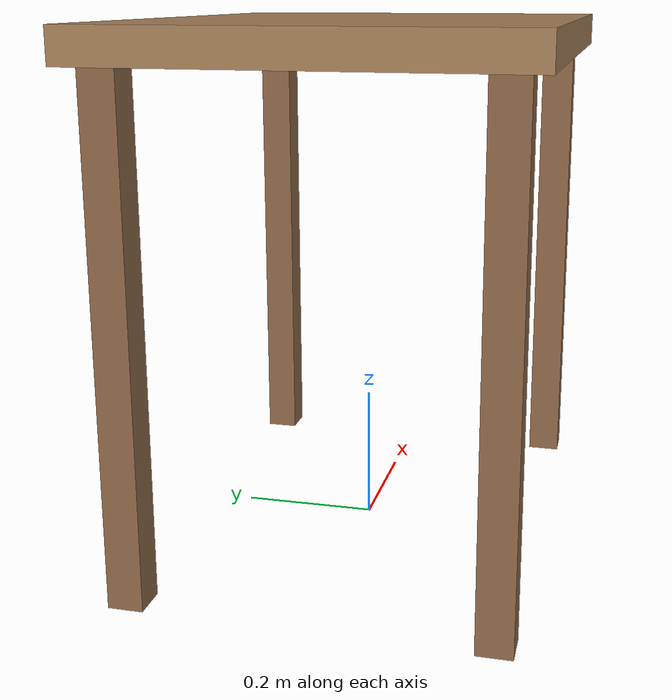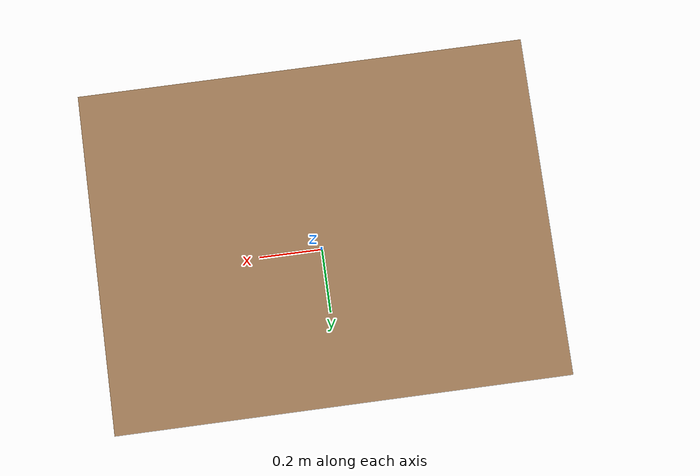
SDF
<?xml version="1.0" encoding="utf-8"?>
<!--
  Table model — a simple rectangular table for tabletop manipulation tasks.
  Dimensions: 0.8m (W) × 0.6m (D) × 0.75m (H)
  Top thickness: 0.05m, Leg size: 0.05m × 0.05m
-->
<sdf version="1.9">
  <model name="table">

    <!-- Table top surface -->
    <link name="table_top">
      <pose>0 0 0.75 0 0 0</pose>
      <inertial>
        <mass>5.0</mass>
        <inertia>
          <ixx>0.5</ixx> <ixy>0.0</ixy> <ixz>0.0</ixz>
          <iyy>0.3</iyy> <iyz>0.0</iyz>
          <izz>0.5</izz>
        </inertia>
      </inertial>
      <visual name="table_top_visual">
        <geometry>
          <box>
            <size>0.80 0.60 0.05</size>
          </box>
        </geometry>
        <material>
          <ambient>0.65 0.50 0.35 1</ambient>
          <diffuse>0.65 0.50 0.35 1</diffuse>
          <specular>0.05 0.05 0.05 1</specular>
        </material>
      </visual>
      <collision name="table_top_collision">
        <geometry>
          <box>
            <size>0.80 0.60 0.05</size>
          </box>
        </geometry>
      </collision>
    </link>

    <!-- Front-left leg -->
    <link name="leg_fl">
      <pose>0.35 0.25 0.375 0 0 0</pose>
      <inertial>
        <mass>1.0</mass>
        <inertia>
          <ixx>0.005</ixx> <ixy>0.0</ixy> <ixz>0.0</ixz>
          <iyy>0.005</iyy> <iyz>0.0</iyz>
          <izz>0.001</izz>
        </inertia>
      </inertial>
      <visual name="leg_fl_visual">
        <geometry>
          <box>
            <size>0.05 0.05 0.75</size>
          </box>
        </geometry>
        <material>
          <ambient>0.55 0.40 0.28 1</ambient>
          <diffuse>0.55 0.40 0.28 1</diffuse>
        </material>
      </visual>
      <collision name="leg_fl_collision">
        <geometry>
          <box>
            <size>0.05 0.05 0.75</size>
          </box>
        </geometry>
      </collision>
    </link>

    <!-- Front-right leg -->
    <link name="leg_fr">
      <pose>0.35 -0.25 0.375 0 0 0</pose>
      <inertial>
        <mass>1.0</mass>
        <inertia>
          <ixx>0.005</ixx> <ixy>0.0</ixy> <ixz>0.0</ixz>
          <iyy>0.005</iyy> <iyz>0.0</iyz>
          <izz>0.001</izz>
        </inertia>
      </inertial>
      <visual name="leg_fr_visual">
        <geometry>
          <box>
            <size>0.05 0.05 0.75</size>
          </box>
        </geometry>
        <material>
          <ambient>0.55 0.40 0.28 1</ambient>
          <diffuse>0.55 0.40 0.28 1</diffuse>
        </material>
      </visual>
      <collision name="leg_fr_collision">
        <geometry>
          <box>
            <size>0.05 0.05 0.75</size>
          </box>
        </geometry>
      </collision>
    </link>

    <!-- Back-left leg -->
    <link name="leg_bl">
      <pose>-0.35 0.25 0.375 0 0 0</pose>
      <inertial>
        <mass>1.0</mass>
        <inertia>
          <ixx>0.005</ixx> <ixy>0.0</ixy> <ixz>0.0</ixz>
          <iyy>0.005</iyy> <iyz>0.0</iyz>
          <izz>0.001</izz>
        </inertia>
      </inertial>
      <visual name="leg_bl_visual">
        <geometry>
          <box>
            <size>0.05 0.05 0.75</size>
          </box>
        </geometry>
        <material>
          <ambient>0.55 0.40 0.28 1</ambient>
          <diffuse>0.55 0.40 0.28 1</diffuse>
        </material>
      </visual>
      <collision name="leg_bl_collision">
        <geometry>
          <box>
            <size>0.05 0.05 0.75</size>
          </box>
        </geometry>
      </collision>
    </link>

    <!-- Back-right leg -->
    <link name="leg_br">
      <pose>-0.35 -0.25 0.375 0 0 0</pose>
      <inertial>
        <mass>1.0</mass>
        <inertia>
          <ixx>0.005</ixx> <ixy>0.0</ixy> <ixz>0.0</ixz>
          <iyy>0.005</iyy> <iyz>0.0</iyz>
          <izz>0.001</izz>
        </inertia>
      </inertial>
      <visual name="leg_br_visual">
        <geometry>
          <box>
            <size>0.05 0.05 0.75</size>
          </box>
        </geometry>
        <material>
          <ambient>0.55 0.40 0.28 1</ambient>
          <diffuse>0.55 0.40 0.28 1</diffuse>
        </material>
      </visual>
      <collision name="leg_br_collision">
        <geometry>
          <box>
            <size>0.05 0.05 0.75</size>
          </box>
        </geometry>
      </collision>
    </link>

    <!-- Fixed joints: top → legs -->
    <joint name="leg_fl_joint" type="fixed">
      <parent>table_top</parent>
      <child>leg_fl</child>
    </joint>
    <joint name="leg_fr_joint" type="fixed">
      <parent>table_top</parent>
      <child>leg_fr</child>
    </joint>
    <joint name="leg_bl_joint" type="fixed">
      <parent>table_top</parent>
      <child>leg_bl</child>
    </joint>
    <joint name="leg_br_joint" type="fixed">
      <parent>table_top</parent>
      <child>leg_br</child>
    </joint>

  </model>
</sdf>
